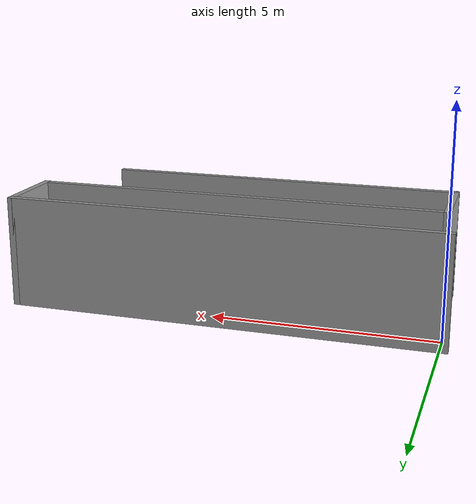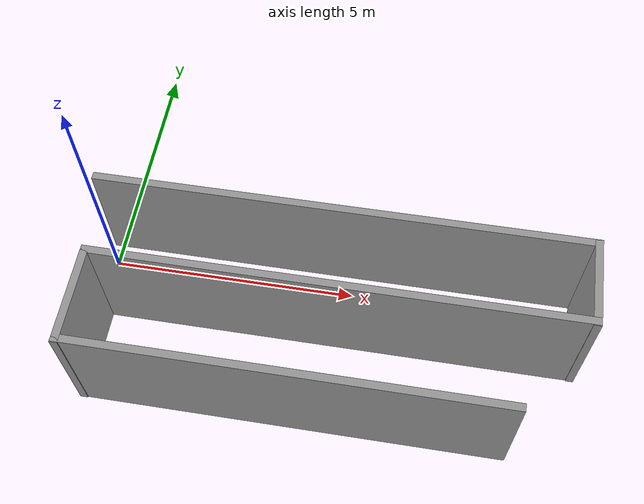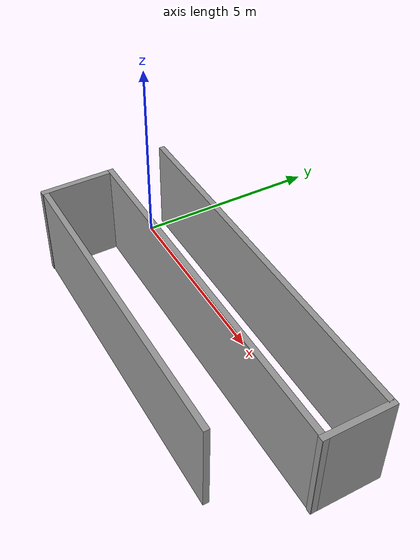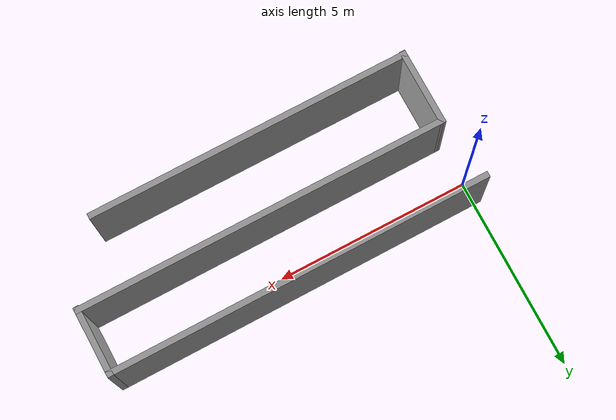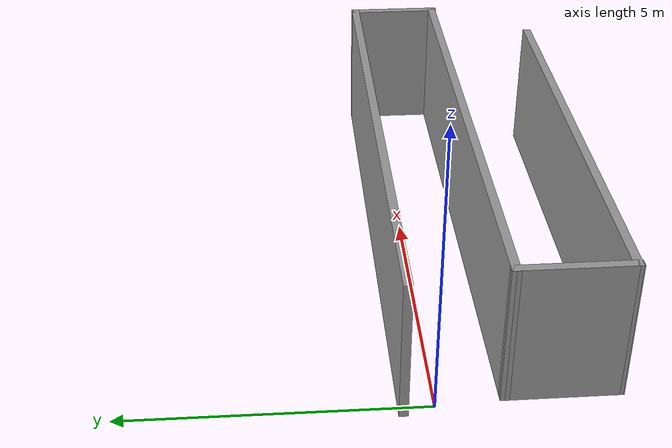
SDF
<?xml version='1.0'?>
<sdf version='1.7'>

  <model name='Duvar'>
    <pose>4.69304 -1.21545 0 0 -0 0</pose>
    <link name='Wall_22'>
      <collision name='Wall_22_Collision'>
        <geometry>
          <box>
            <size>9.75 0.15 2.5</size>
          </box>
        </geometry>
        <pose>0 0 1.25 0 -0 0</pose>
      </collision>
      <visual name='Wall_22_Visual'>
        <pose>0 0 1.25 0 -0 0</pose>
        <geometry>
          <box>
            <size>9.75 0.15 2.5</size>
          </box>
        </geometry>
        <material>
          <script>
            <uri>file://media/materials/scripts/gazebo.material</uri>
            <name>Gazebo/Grey</name>
          </script>
          <ambient>1 1 1 1</ambient>
        </material>
        <meta>
          <layer>0</layer>
        </meta>
      </visual>
      <pose>0 1.7219 0 0 -0 0</pose>
    </link>
    <link name='Wall_23'>
      <collision name='Wall_23_Collision'>
        <geometry>
          <box>
            <size>1.78042 0.15 2.5</size>
          </box>
        </geometry>
        <pose>0 0 1.25 0 -0 0</pose>
      </collision>
      <visual name='Wall_23_Visual'>
        <pose>0 0 1.25 0 -0 0</pose>
        <geometry>
          <box>
            <size>1.78042 0.15 2.5</size>
          </box>
        </geometry>
        <material>
          <script>
            <uri>file://media/materials/scripts/gazebo.material</uri>
            <name>Gazebo/Grey</name>
          </script>
          <ambient>1 1 1 1</ambient>
        </material>
        <meta>
          <layer>0</layer>
        </meta>
      </visual>
      <pose>4.8 0.906691 0 0 -0 -1.5708</pose>
    </link>
    <link name='Wall_24'>
      <collision name='Wall_24_Collision'>
        <geometry>
          <box>
            <size>9.5 0.15 2.5</size>
          </box>
        </geometry>
        <pose>0 0 1.25 0 -0 0</pose>
      </collision>
      <visual name='Wall_24_Visual'>
        <pose>0 0 1.25 0 -0 0</pose>
        <geometry>
          <box>
            <size>9.5 0.15 2.5</size>
          </box>
        </geometry>
        <material>
          <script>
            <uri>file://media/materials/scripts/gazebo.material</uri>
            <name>Gazebo/Grey</name>
          </script>
          <ambient>1 1 1 1</ambient>
        </material>
        <meta>
          <layer>0</layer>
        </meta>
      </visual>
      <pose>0.125 0.106691 0 0 -0 3.14159</pose>
    </link>
    <link name='Wall_25'>
      <collision name='Wall_25_Collision'>
        <geometry>
          <box>
            <size>1.97817 0.15 2.5</size>
          </box>
        </geometry>
        <pose>0 0 1.25 0 -0 0</pose>
      </collision>
      <visual name='Wall_25_Visual'>
        <pose>0 0 1.25 0 -0 0</pose>
        <geometry>
          <box>
            <size>1.97817 0.15 2.5</size>
          </box>
        </geometry>
        <material>
          <script>
            <uri>file://media/materials/scripts/gazebo.material</uri>
            <name>Gazebo/Grey</name>
          </script>
          <ambient>1 1 1 1</ambient>
        </material>
        <meta>
          <layer>0</layer>
        </meta>
      </visual>
      <pose>-4.54438 -0.807375 0 0 -0 -1.56465</pose>
    </link>
    <link name='Wall_26'>
      <collision name='Wall_26_Collision'>
        <geometry>
          <box>
            <size>8.25 0.15 2.5</size>
          </box>
        </geometry>
        <pose>0 0 1.25 0 -0 0</pose>
      </collision>
      <visual name='Wall_26_Visual'>
        <pose>0 0 1.25 0 -0 0</pose>
        <geometry>
          <box>
            <size>8.25 0.15 2.5</size>
          </box>
        </geometry>
        <material>
          <script>
            <uri>file://media/materials/scripts/gazebo.material</uri>
            <name>Gazebo/Grey</name>
          </script>
          <ambient>1 1 1 1</ambient>
        </material>
        <meta>
          <layer>0</layer>
        </meta>
      </visual>
      <pose>-0.488766 -1.70623 0 0 -0 0</pose>
    </link>
    <static>1</static>
  </model>
</sdf>
